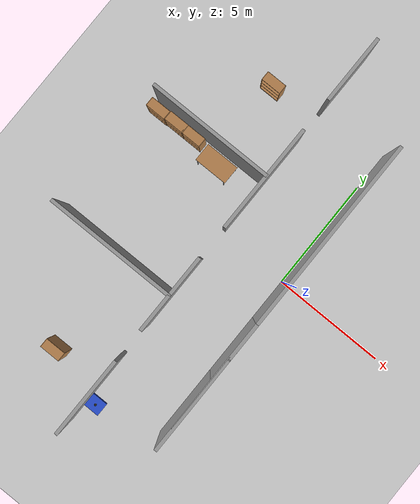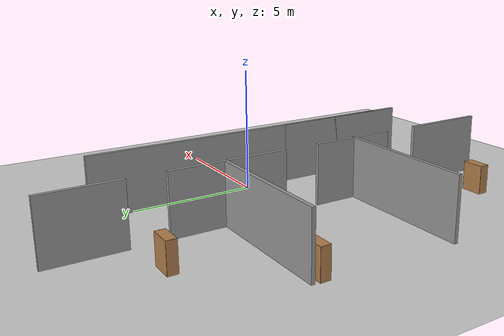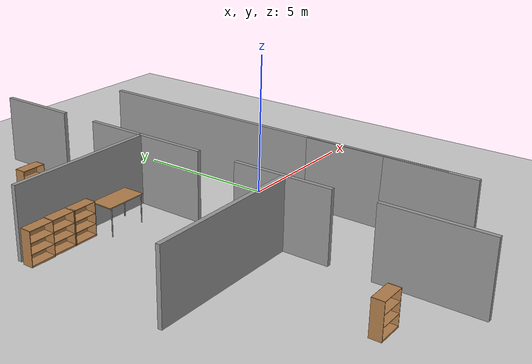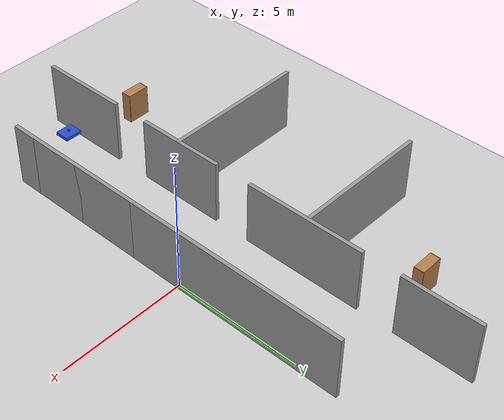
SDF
<sdf version="1.7">
 <world name="default">
  <model name="ground_plane">
   <static>1</static>
   <link name="link">
    <collision name="collision">
     <geometry><plane><normal>0 0 1</normal><size>100 100</size></plane></geometry>
     <surface>
      <contact><collide_bitmask>65535</collide_bitmask></contact>
      <friction><ode><mu>100</mu><mu2>50</mu2></ode></friction>
     </surface>
    </collision>
    <visual name="visual">
     <cast_shadows>0</cast_shadows>
     <geometry><plane><normal>0 0 1</normal><size>100 100</size></plane></geometry>
     <material>
      <script><uri>file://media/materials/scripts/gazebo.material</uri><name>Gazebo/Grey</name></script>
     </material>
    </visual>
   </link>
  </model>
  <model name="my_bot">
   <link name="base_link">
    <inertial>
     <pose>0 0 0.0345 0 -0 0</pose>
     <mass>1</mass>
     <inertia>
      <ixx>0.0393076</ixx>
      <ixy>0</ixy>
      <ixz>2.60209e-18</ixz>
      <iyy>0.0647243</iyy>
      <iyz>0</iyz>
      <izz>0.0875577</izz>
     </inertia>
    </inertial>
    <collision name="base_link_fixed_joint_lump__chassis_collision">
     <pose>0 0 0.083 0 -0 0</pose>
     <geometry><box><size>0.7 0.6 0.126</size></box></geometry>
    </collision>
    <collision name="base_link_fixed_joint_lump__caster1_wheel_collision_1">
     <pose>-0.3 0.2 -0.065 0 -0 0</pose>
     <geometry><sphere><radius>0.01</radius></sphere></geometry>
     <surface><friction><ode><mu>0.001</mu><mu2>0.001</mu2></ode></friction></surface>
    </collision>
    <collision name="base_link_fixed_joint_lump__caster2_wheel_collision_2">
     <pose>-0.3 -0.2 -0.065 0 -0 0</pose>
     <geometry><sphere><radius>0.01</radius></sphere></geometry>
     <surface><friction><ode><mu>0.001</mu><mu2>0.001</mu2></ode></friction></surface>
    </collision>
    <collision name="base_link_fixed_joint_lump__caster3_wheel_collision_3">
     <pose>0.3 -0.2 -0.065 0 -0 0</pose>
     <geometry><sphere><radius>0.01</radius></sphere></geometry>
     <surface><friction><ode><mu>0.001</mu><mu2>0.001</mu2></ode></friction></surface>
    </collision>
    <collision name="base_link_fixed_joint_lump__caster4_wheel_collision_4">
     <pose>0.3 0.2 -0.065 0 -0 0</pose>
     <geometry><sphere><radius>0.01</radius></sphere></geometry>
     <surface><friction><ode><mu>0.001</mu><mu2>0.001</mu2></ode></friction></surface>
    </collision>
    <collision name="base_link_fixed_joint_lump__laser_frame_collision_5">
     <pose>0 0 0.19 0 -0 0</pose>
     <geometry><cylinder><length>0.04</length><radius>0.05</radius></cylinder></geometry>
    </collision>
    <visual name="base_link_fixed_joint_lump__chassis_visual">
     <pose>0 0 0.083 0 -0 0</pose>
     <geometry><box><size>0.7 0.6 0.126</size></box></geometry>
     <material>
      <script><name>Gazebo/Blue</name><uri>file://media/materials/scripts/gazebo.material</uri></script>
     </material>
    </visual>
    <visual name="base_link_fixed_joint_lump__caster1_wheel_visual_1">
     <pose>-0.3 0.2 -0.065 0 -0 0</pose>
     <geometry><sphere><radius>0.01</radius></sphere></geometry>
     <material>
      <script><name>Gazebo/Blue</name><uri>file://media/materials/scripts/gazebo.material</uri></script>
     </material>
    </visual>
    <visual name="base_link_fixed_joint_lump__caster2_wheel_visual_2">
     <pose>-0.3 -0.2 -0.065 0 -0 0</pose>
     <geometry><sphere><radius>0.01</radius></sphere></geometry>
     <material>
      <script><name>Gazebo/Blue</name><uri>file://media/materials/scripts/gazebo.material</uri></script>
     </material>
    </visual>
    <visual name="base_link_fixed_joint_lump__caster3_wheel_visual_3">
     <pose>0.3 -0.2 -0.065 0 -0 0</pose>
     <geometry><sphere><radius>0.01</radius></sphere></geometry>
     <material>
      <script><name>Gazebo/Blue</name><uri>file://media/materials/scripts/gazebo.material</uri></script>
     </material>
    </visual>
    <visual name="base_link_fixed_joint_lump__caster4_wheel_visual_4">
     <pose>0.3 0.2 -0.065 0 -0 0</pose>
     <geometry><sphere><radius>0.01</radius></sphere></geometry>
     <material>
      <script><name>Gazebo/Blue</name><uri>file://media/materials/scripts/gazebo.material</uri></script>
     </material>
    </visual>
    <visual name="base_link_fixed_joint_lump__face_link_visual_5">
     <pose>0.35 0.05 0.093 3.14159 1.57079 3.14159</pose>
     <geometry><cylinder><length>0.002</length><radius>0.01</radius></cylinder></geometry>
     <material>
      <script><name>Gazebo/Black</name><uri>file://media/materials/scripts/gazebo.material</uri></script>
     </material>
    </visual>
    <visual name="base_link_fixed_joint_lump__face_link_visual_6">
     <pose>0.35 -0.05 0.093 3.14159 1.57079 3.14159</pose>
     <geometry><cylinder><length>0.002</length><radius>0.01</radius></cylinder></geometry>
     <material>
      <script><name>Gazebo/Black</name><uri>file://media/materials/scripts/gazebo.material</uri></script>
     </material>
    </visual>
    <visual name="base_link_fixed_joint_lump__face_link_visual_7">
     <pose>0.339 0 0.083 0 1.5 0</pose>
     <geometry><cylinder><length>0.02</length><radius>0.03</radius></cylinder></geometry>
     <material>
      <script><name>Gazebo/Black</name><uri>file://media/materials/scripts/gazebo.material</uri></script>
     </material>
    </visual>
    <visual name="base_link_fixed_joint_lump__laser_frame_visual_8">
     <pose>0 0 0.19 0 -0 0</pose>
     <geometry><cylinder><length>0.04</length><radius>0.05</radius></cylinder></geometry>
     <material>
      <script><name>Gazebo/Black</name><uri>file://media/materials/scripts/gazebo.material</uri></script>
     </material>
    </visual>
    <visual name="base_link_fixed_joint_lump__laser_frame_visual_9">
     <pose>0 0 0.14 0 -0 0</pose>
     <geometry><cylinder><length>0.1</length><radius>0.01</radius></cylinder></geometry>
     <material>
      <script><name>Gazebo/Black</name><uri>file://media/materials/scripts/gazebo.material</uri></script>
     </material>
    </visual>
    <sensor name="laser" type="ray">
     <visualize>1</visualize>
     <always_on>1</always_on>
     <update_rate>10</update_rate>
     <ray>
      <scan>
       <horizontal>
        <samples>360</samples>
        <resolution>1</resolution>
        <min_angle>-3.14</min_angle>
        <max_angle>3.14</max_angle>
       </horizontal>
       <vertical><samples>1</samples><min_angle>0</min_angle><max_angle>0</max_angle></vertical>
      </scan>
      <range><min>0.3</min><max>12</max><resolution>0.015</resolution></range>
      <noise><type>gaussian</type><mean>0</mean><stddev>0.01</stddev></noise>
     </ray>
     <plugin name="laser_controller" filename="libgazebo_ros_ray_sensor.so">
      <ros><remapping>~/out:=scan</remapping></ros>
      <output_type>sensor_msgs/LaserScan</output_type>
      <alwaysOn>1</alwaysOn>
      <updateRate>10</updateRate>
      <topicName>scan</topicName>
      <frame_name>laser_frame</frame_name>
      <output_type>sensor_msgs/LaserScan</output_type>
     </plugin>
     <pose>0 0 0.19 0 -0 0</pose>
    </sensor>
   </link>
   <joint name="left_wheel_joint" type="revolute">
    <pose relative_to="base_link">0 0.205 0 -1.5708 0 0</pose>
    <parent>base_link</parent>
    <child>left_wheel</child>
    <axis>
     <xyz>0 0 1</xyz>
     <limit><lower>-1e+16</lower><upper>1e+16</upper></limit>
     <dynamics><spring_reference>0</spring_reference><spring_stiffness>0</spring_stiffness></dynamics>
    </axis>
   </joint>
   <link name="left_wheel">
    <pose relative_to="left_wheel_joint">0 0 0 0 -0 0</pose>
    <inertial>
     <mass>0.05</mass>
     <inertia>
      <ixx>7.69792e-05</ixx>
      <ixy>0</ixy>
      <ixz>0</ixz>
      <iyy>7.69792e-05</iyy>
      <iyz>0</iyz>
      <izz>0.000140625</izz>
     </inertia>
    </inertial>
    <collision name="left_wheel_collision">
     <geometry><sphere><radius>0.075</radius></sphere></geometry>
    </collision>
    <visual name="left_wheel_visual">
     <geometry><cylinder><length>0.04</length><radius>0.075</radius></cylinder></geometry>
     <material>
      <script><name>Gazebo/Black</name><uri>file://media/materials/scripts/gazebo.material</uri></script>
     </material>
    </visual>
   </link>
   <joint name="right_wheel_joint" type="revolute">
    <pose relative_to="base_link">0 -0.205 0 1.5708 -0 0</pose>
    <parent>base_link</parent>
    <child>right_wheel</child>
    <axis>
     <xyz>0 0 -1</xyz>
     <limit><lower>-1e+16</lower><upper>1e+16</upper></limit>
     <dynamics><spring_reference>0</spring_reference><spring_stiffness>0</spring_stiffness></dynamics>
    </axis>
   </joint>
   <link name="right_wheel">
    <pose relative_to="right_wheel_joint">0 0 0 0 -0 0</pose>
    <inertial>
     <mass>0.05</mass>
     <inertia>
      <ixx>7.69792e-05</ixx>
      <ixy>0</ixy>
      <ixz>0</ixz>
      <iyy>7.69792e-05</iyy>
      <iyz>0</iyz>
      <izz>0.000140625</izz>
     </inertia>
    </inertial>
    <collision name="right_wheel_collision">
     <geometry><sphere><radius>0.075</radius></sphere></geometry>
    </collision>
    <visual name="right_wheel_visual">
     <geometry><cylinder><length>0.04</length><radius>0.075</radius></cylinder></geometry>
     <material>
      <script><name>Gazebo/Black</name><uri>file://media/materials/scripts/gazebo.material</uri></script>
     </material>
    </visual>
   </link>
   <static>0</static>
   <plugin name="gazebo_ros2_control" filename="libgazebo_ros2_control.so">
    <parameters>/home/robot/robot/install/ramabot/share/ramabot/config/my_controllers.yaml</parameters>
    <parameters>/home/robot/robot/install/ramabot/share/ramabot/config/gaz_ros2_ctl_use_sim.yaml</parameters>
   </plugin>
   <pose>-2.75861 -8.67534 0.074995 -2.5e-05 -0 -0.001635</pose>
  </model>
  <model name="samping">
   <pose>-3.71493 -0.202752 0 0 -0 0</pose>
   <link name="Wall_31">
    <collision name="Wall_31_Collision">
     <geometry><box><size>3 0.15 2.5</size></box></geometry>
     <pose>0 0 1.25 0 -0 0</pose>
    </collision>
    <visual name="Wall_31_Visual">
     <pose>0 0 1.25 0 -0 0</pose>
     <geometry><box><size>3 0.15 2.5</size></box></geometry>
     <material>
      <script><uri>file://media/materials/scripts/gazebo.material</uri><name>Gazebo/Grey</name></script>
      <ambient>1 1 1 1</ambient>
     </material>
     <meta><layer>0</layer></meta>
    </visual>
    <pose>0.530829 8.05 0 0 -0 -1.5708</pose>
   </link>
   <link name="Wall_33">
    <collision name="Wall_33_Collision">
     <geometry><box><size>4.75 0.15 2.5</size></box></geometry>
     <pose>0 0 1.25 0 -0 0</pose>
    </collision>
    <visual name="Wall_33_Visual">
     <pose>0 0 1.25 0 -0 0</pose>
     <geometry><box><size>4.75 0.15 2.5</size></box></geometry>
     <material>
      <script><uri>file://media/materials/scripts/gazebo.material</uri><name>Gazebo/Grey</name></script>
      <ambient>1 1 1 1</ambient>
     </material>
     <meta><layer>0</layer></meta>
    </visual>
    <pose>0.530829 2.725 0 0 -0 -1.5708</pose>
   </link>
   <link name="Wall_35">
    <collision name="Wall_35_Collision">
     <geometry><box><size>3.5 0.15 2.5</size></box></geometry>
     <pose>0 0 1.25 0 -0 0</pose>
    </collision>
    <visual name="Wall_35_Visual">
     <pose>0 0 1.25 0 -0 0</pose>
     <geometry><box><size>3.5 0.15 2.5</size></box></geometry>
     <material>
      <script><uri>file://media/materials/scripts/gazebo.material</uri><name>Gazebo/Grey</name></script>
      <ambient>1 1 1 1</ambient>
     </material>
     <meta><layer>0</layer></meta>
    </visual>
    <pose>0.530829 -2.85 0 0 -0 -1.5708</pose>
   </link>
   <link name="Wall_37">
    <collision name="Wall_37_Collision">
     <geometry><box><size>3.5 0.15 2.5</size></box></geometry>
     <pose>0 0 1.25 0 -0 0</pose>
    </collision>
    <visual name="Wall_37_Visual">
     <pose>0 0 1.25 0 -0 0</pose>
     <geometry><box><size>3.5 0.15 2.5</size></box></geometry>
     <material>
      <script><uri>file://media/materials/scripts/gazebo.material</uri><name>Gazebo/Grey</name></script>
      <ambient>1 1 1 1</ambient>
     </material>
     <meta><layer>0</layer></meta>
    </visual>
    <pose>0.530829 -7.8 0 0 -0 -1.5708</pose>
   </link>
   <link name="Wall_39">
    <collision name="Wall_39_Collision">
     <geometry><box><size>5.5 0.15 2.5</size></box></geometry>
     <pose>0 0 1.25 0 -0 0</pose>
    </collision>
    <visual name="Wall_39_Visual">
     <pose>0 0 1.25 0 -0 0</pose>
     <geometry><box><size>5.5 0.15 2.5</size></box></geometry>
     <material>
      <script><uri>file://media/materials/scripts/gazebo.material</uri><name>Gazebo/Grey</name></script>
      <ambient>1 1 1 1</ambient>
     </material>
     <meta><layer>0</layer></meta>
    </visual>
    <pose>-2.19664 2.86376 0 0 -0 3.14159</pose>
   </link>
   <link name="Wall_41">
    <collision name="Wall_41_Collision">
     <geometry><box><size>5.75 0.15 2.5</size></box></geometry>
     <pose>0 0 1.25 0 -0 0</pose>
    </collision>
    <visual name="Wall_41_Visual">
     <pose>0 0 1.25 0 -0 0</pose>
     <geometry><box><size>5.75 0.15 2.5</size></box></geometry>
     <material>
      <script><uri>file://media/materials/scripts/gazebo.material</uri><name>Gazebo/Grey</name></script>
      <ambient>1 1 1 1</ambient>
     </material>
     <meta><layer>0</layer></meta>
    </visual>
    <pose>-2.28666 -2.92545 0 0 -0 3.14159</pose>
   </link>
   <static>1</static>
  </model>
  <model name="bookshelf_0">
   <static>1</static>
   <link name="link">
    <inertial><mass>1</mass></inertial>
    <collision name="back">
     <pose>0 0.005 0.6 0 -0 0</pose>
     <geometry><box><size>0.9 0.01 1.2</size></box></geometry>
    </collision>
    <visual name="visual1">
     <pose>0 0.005 0.6 0 -0 0</pose>
     <geometry><box><size>0.9 0.01 1.2</size></box></geometry>
     <material>
      <script><uri>file://media/materials/scripts/gazebo.material</uri><name>Gazebo/Wood</name></script>
     </material>
    </visual>
    <collision name="left_side">
     <pose>0.45 -0.195 0.6 0 -0 0</pose>
     <geometry><box><size>0.02 0.4 1.2</size></box></geometry>
    </collision>
    <visual name="visual2">
     <pose>0.45 -0.195 0.6 0 -0 0</pose>
     <geometry><box><size>0.02 0.4 1.2</size></box></geometry>
     <material>
      <script><uri>file://media/materials/scripts/gazebo.material</uri><name>Gazebo/Wood</name></script>
     </material>
    </visual>
    <collision name="right_side">
     <pose>-0.45 -0.195 0.6 0 -0 0</pose>
     <geometry><box><size>0.02 0.4 1.2</size></box></geometry>
    </collision>
    <visual name="visual3">
     <pose>-0.45 -0.195 0.6 0 -0 0</pose>
     <geometry><box><size>0.02 0.4 1.2</size></box></geometry>
     <material>
      <script><uri>file://media/materials/scripts/gazebo.material</uri><name>Gazebo/Wood</name></script>
     </material>
    </visual>
    <collision name="bottom">
     <pose>0 -0.195 0.03 0 -0 0</pose>
     <geometry><box><size>0.88 0.4 0.06</size></box></geometry>
    </collision>
    <visual name="visual4">
     <pose>0 -0.195 0.03 0 -0 0</pose>
     <geometry><box><size>0.88 0.4 0.06</size></box></geometry>
     <material>
      <script><uri>file://media/materials/scripts/gazebo.material</uri><name>Gazebo/Wood</name></script>
     </material>
    </visual>
    <collision name="top">
     <pose>0 -0.195 1.19 0 -0 0</pose>
     <geometry><box><size>0.88 0.4 0.02</size></box></geometry>
    </collision>
    <visual name="visual5">
     <pose>0 -0.195 1.19 0 -0 0</pose>
     <geometry><box><size>0.88 0.4 0.02</size></box></geometry>
     <material>
      <script><uri>file://media/materials/scripts/gazebo.material</uri><name>Gazebo/Wood</name></script>
     </material>
    </visual>
    <collision name="low_shelf">
     <pose>0 -0.195 0.43 0 -0 0</pose>
     <geometry><box><size>0.88 0.4 0.02</size></box></geometry>
    </collision>
    <visual name="visual6">
     <pose>0 -0.195 0.43 0 -0 0</pose>
     <geometry><box><size>0.88 0.4 0.02</size></box></geometry>
     <material>
      <script><uri>file://media/materials/scripts/gazebo.material</uri><name>Gazebo/Wood</name></script>
     </material>
    </visual>
    <collision name="high_shelf">
     <pose>0 -0.195 0.8 0 -0 0</pose>
     <geometry><box><size>0.88 0.4 0.02</size></box></geometry>
    </collision>
    <visual name="visual7">
     <pose>0 -0.195 0.8 0 -0 0</pose>
     <geometry><box><size>0.88 0.4 0.02</size></box></geometry>
     <material>
      <script><uri>file://media/materials/scripts/gazebo.material</uri><name>Gazebo/Wood</name></script>
     </material>
    </visual>
   </link>
   <pose>-5.33418 6.12104 0 0 -0 0</pose>
  </model>
  <model name="bookshelf_3">
   <static>1</static>
   <link name="link">
    <inertial><mass>1</mass></inertial>
    <collision name="back">
     <pose>0 0.005 0.6 0 -0 0</pose>
     <geometry><box><size>0.9 0.01 1.2</size></box></geometry>
    </collision>
    <visual name="visual1">
     <pose>0 0.005 0.6 0 -0 0</pose>
     <geometry><box><size>0.9 0.01 1.2</size></box></geometry>
     <material>
      <script><uri>file://media/materials/scripts/gazebo.material</uri><name>Gazebo/Wood</name></script>
     </material>
    </visual>
    <collision name="left_side">
     <pose>0.45 -0.195 0.6 0 -0 0</pose>
     <geometry><box><size>0.02 0.4 1.2</size></box></geometry>
    </collision>
    <visual name="visual2">
     <pose>0.45 -0.195 0.6 0 -0 0</pose>
     <geometry><box><size>0.02 0.4 1.2</size></box></geometry>
     <material>
      <script><uri>file://media/materials/scripts/gazebo.material</uri><name>Gazebo/Wood</name></script>
     </material>
    </visual>
    <collision name="right_side">
     <pose>-0.45 -0.195 0.6 0 -0 0</pose>
     <geometry><box><size>0.02 0.4 1.2</size></box></geometry>
    </collision>
    <visual name="visual3">
     <pose>-0.45 -0.195 0.6 0 -0 0</pose>
     <geometry><box><size>0.02 0.4 1.2</size></box></geometry>
     <material>
      <script><uri>file://media/materials/scripts/gazebo.material</uri><name>Gazebo/Wood</name></script>
     </material>
    </visual>
    <collision name="bottom">
     <pose>0 -0.195 0.03 0 -0 0</pose>
     <geometry><box><size>0.88 0.4 0.06</size></box></geometry>
    </collision>
    <visual name="visual4">
     <pose>0 -0.195 0.03 0 -0 0</pose>
     <geometry><box><size>0.88 0.4 0.06</size></box></geometry>
     <material>
      <script><uri>file://media/materials/scripts/gazebo.material</uri><name>Gazebo/Wood</name></script>
     </material>
    </visual>
    <collision name="top">
     <pose>0 -0.195 1.19 0 -0 0</pose>
     <geometry><box><size>0.88 0.4 0.02</size></box></geometry>
    </collision>
    <visual name="visual5">
     <pose>0 -0.195 1.19 0 -0 0</pose>
     <geometry><box><size>0.88 0.4 0.02</size></box></geometry>
     <material>
      <script><uri>file://media/materials/scripts/gazebo.material</uri><name>Gazebo/Wood</name></script>
     </material>
    </visual>
    <collision name="low_shelf">
     <pose>0 -0.195 0.43 0 -0 0</pose>
     <geometry><box><size>0.88 0.4 0.02</size></box></geometry>
    </collision>
    <visual name="visual6">
     <pose>0 -0.195 0.43 0 -0 0</pose>
     <geometry><box><size>0.88 0.4 0.02</size></box></geometry>
     <material>
      <script><uri>file://media/materials/scripts/gazebo.material</uri><name>Gazebo/Wood</name></script>
     </material>
    </visual>
    <collision name="high_shelf">
     <pose>0 -0.195 0.8 0 -0 0</pose>
     <geometry><box><size>0.88 0.4 0.02</size></box></geometry>
    </collision>
    <visual name="visual7">
     <pose>0 -0.195 0.8 0 -0 0</pose>
     <geometry><box><size>0.88 0.4 0.02</size></box></geometry>
     <material>
      <script><uri>file://media/materials/scripts/gazebo.material</uri><name>Gazebo/Wood</name></script>
     </material>
    </visual>
   </link>
   <pose>-8.25417 2.42816 0 0 -0 0</pose>
  </model>
  <model name="bookshelf_4">
   <static>1</static>
   <link name="link">
    <inertial><mass>1</mass></inertial>
    <collision name="back">
     <pose>0 0.005 0.6 0 -0 0</pose>
     <geometry><box><size>0.9 0.01 1.2</size></box></geometry>
    </collision>
    <visual name="visual1">
     <pose>0 0.005 0.6 0 -0 0</pose>
     <geometry><box><size>0.9 0.01 1.2</size></box></geometry>
     <material>
      <script><uri>file://media/materials/scripts/gazebo.material</uri><name>Gazebo/Wood</name></script>
     </material>
    </visual>
    <collision name="left_side">
     <pose>0.45 -0.195 0.6 0 -0 0</pose>
     <geometry><box><size>0.02 0.4 1.2</size></box></geometry>
    </collision>
    <visual name="visual2">
     <pose>0.45 -0.195 0.6 0 -0 0</pose>
     <geometry><box><size>0.02 0.4 1.2</size></box></geometry>
     <material>
      <script><uri>file://media/materials/scripts/gazebo.material</uri><name>Gazebo/Wood</name></script>
     </material>
    </visual>
    <collision name="right_side">
     <pose>-0.45 -0.195 0.6 0 -0 0</pose>
     <geometry><box><size>0.02 0.4 1.2</size></box></geometry>
    </collision>
    <visual name="visual3">
     <pose>-0.45 -0.195 0.6 0 -0 0</pose>
     <geometry><box><size>0.02 0.4 1.2</size></box></geometry>
     <material>
      <script><uri>file://media/materials/scripts/gazebo.material</uri><name>Gazebo/Wood</name></script>
     </material>
    </visual>
    <collision name="bottom">
     <pose>0 -0.195 0.03 0 -0 0</pose>
     <geometry><box><size>0.88 0.4 0.06</size></box></geometry>
    </collision>
    <visual name="visual4">
     <pose>0 -0.195 0.03 0 -0 0</pose>
     <geometry><box><size>0.88 0.4 0.06</size></box></geometry>
     <material>
      <script><uri>file://media/materials/scripts/gazebo.material</uri><name>Gazebo/Wood</name></script>
     </material>
    </visual>
    <collision name="top">
     <pose>0 -0.195 1.19 0 -0 0</pose>
     <geometry><box><size>0.88 0.4 0.02</size></box></geometry>
    </collision>
    <visual name="visual5">
     <pose>0 -0.195 1.19 0 -0 0</pose>
     <geometry><box><size>0.88 0.4 0.02</size></box></geometry>
     <material>
      <script><uri>file://media/materials/scripts/gazebo.material</uri><name>Gazebo/Wood</name></script>
     </material>
    </visual>
    <collision name="low_shelf">
     <pose>0 -0.195 0.43 0 -0 0</pose>
     <geometry><box><size>0.88 0.4 0.02</size></box></geometry>
    </collision>
    <visual name="visual6">
     <pose>0 -0.195 0.43 0 -0 0</pose>
     <geometry><box><size>0.88 0.4 0.02</size></box></geometry>
     <material>
      <script><uri>file://media/materials/scripts/gazebo.material</uri><name>Gazebo/Wood</name></script>
     </material>
    </visual>
    <collision name="high_shelf">
     <pose>0 -0.195 0.8 0 -0 0</pose>
     <geometry><box><size>0.88 0.4 0.02</size></box></geometry>
    </collision>
    <visual name="visual7">
     <pose>0 -0.195 0.8 0 -0 0</pose>
     <geometry><box><size>0.88 0.4 0.02</size></box></geometry>
     <material>
      <script><uri>file://media/materials/scripts/gazebo.material</uri><name>Gazebo/Wood</name></script>
     </material>
    </visual>
   </link>
   <pose>-7.33837 2.45677 0 0 -0 0</pose>
  </model>
  <model name="bookshelf_5">
   <static>1</static>
   <link name="link">
    <inertial><mass>1</mass></inertial>
    <collision name="back">
     <pose>0 0.005 0.6 0 -0 0</pose>
     <geometry><box><size>0.9 0.01 1.2</size></box></geometry>
    </collision>
    <visual name="visual1">
     <pose>0 0.005 0.6 0 -0 0</pose>
     <geometry><box><size>0.9 0.01 1.2</size></box></geometry>
     <material>
      <script><uri>file://media/materials/scripts/gazebo.material</uri><name>Gazebo/Wood</name></script>
     </material>
    </visual>
    <collision name="left_side">
     <pose>0.45 -0.195 0.6 0 -0 0</pose>
     <geometry><box><size>0.02 0.4 1.2</size></box></geometry>
    </collision>
    <visual name="visual2">
     <pose>0.45 -0.195 0.6 0 -0 0</pose>
     <geometry><box><size>0.02 0.4 1.2</size></box></geometry>
     <material>
      <script><uri>file://media/materials/scripts/gazebo.material</uri><name>Gazebo/Wood</name></script>
     </material>
    </visual>
    <collision name="right_side">
     <pose>-0.45 -0.195 0.6 0 -0 0</pose>
     <geometry><box><size>0.02 0.4 1.2</size></box></geometry>
    </collision>
    <visual name="visual3">
     <pose>-0.45 -0.195 0.6 0 -0 0</pose>
     <geometry><box><size>0.02 0.4 1.2</size></box></geometry>
     <material>
      <script><uri>file://media/materials/scripts/gazebo.material</uri><name>Gazebo/Wood</name></script>
     </material>
    </visual>
    <collision name="bottom">
     <pose>0 -0.195 0.03 0 -0 0</pose>
     <geometry><box><size>0.88 0.4 0.06</size></box></geometry>
    </collision>
    <visual name="visual4">
     <pose>0 -0.195 0.03 0 -0 0</pose>
     <geometry><box><size>0.88 0.4 0.06</size></box></geometry>
     <material>
      <script><uri>file://media/materials/scripts/gazebo.material</uri><name>Gazebo/Wood</name></script>
     </material>
    </visual>
    <collision name="top">
     <pose>0 -0.195 1.19 0 -0 0</pose>
     <geometry><box><size>0.88 0.4 0.02</size></box></geometry>
    </collision>
    <visual name="visual5">
     <pose>0 -0.195 1.19 0 -0 0</pose>
     <geometry><box><size>0.88 0.4 0.02</size></box></geometry>
     <material>
      <script><uri>file://media/materials/scripts/gazebo.material</uri><name>Gazebo/Wood</name></script>
     </material>
    </visual>
    <collision name="low_shelf">
     <pose>0 -0.195 0.43 0 -0 0</pose>
     <geometry><box><size>0.88 0.4 0.02</size></box></geometry>
    </collision>
    <visual name="visual6">
     <pose>0 -0.195 0.43 0 -0 0</pose>
     <geometry><box><size>0.88 0.4 0.02</size></box></geometry>
     <material>
      <script><uri>file://media/materials/scripts/gazebo.material</uri><name>Gazebo/Wood</name></script>
     </material>
    </visual>
    <collision name="high_shelf">
     <pose>0 -0.195 0.8 0 -0 0</pose>
     <geometry><box><size>0.88 0.4 0.02</size></box></geometry>
    </collision>
    <visual name="visual7">
     <pose>0 -0.195 0.8 0 -0 0</pose>
     <geometry><box><size>0.88 0.4 0.02</size></box></geometry>
     <material>
      <script><uri>file://media/materials/scripts/gazebo.material</uri><name>Gazebo/Wood</name></script>
     </material>
    </visual>
   </link>
   <pose>-6.47939 2.45677 0 0 -0 0</pose>
  </model>
  <model name="bookshelf_6">
   <static>1</static>
   <link name="link">
    <inertial><mass>1</mass></inertial>
    <collision name="back">
     <pose>0 0.005 0.6 0 -0 0</pose>
     <geometry><box><size>0.9 0.01 1.2</size></box></geometry>
    </collision>
    <visual name="visual1">
     <pose>0 0.005 0.6 0 -0 0</pose>
     <geometry><box><size>0.9 0.01 1.2</size></box></geometry>
     <material>
      <script><uri>file://media/materials/scripts/gazebo.material</uri><name>Gazebo/Wood</name></script>
     </material>
    </visual>
    <collision name="left_side">
     <pose>0.45 -0.195 0.6 0 -0 0</pose>
     <geometry><box><size>0.02 0.4 1.2</size></box></geometry>
    </collision>
    <visual name="visual2">
     <pose>0.45 -0.195 0.6 0 -0 0</pose>
     <geometry><box><size>0.02 0.4 1.2</size></box></geometry>
     <material>
      <script><uri>file://media/materials/scripts/gazebo.material</uri><name>Gazebo/Wood</name></script>
     </material>
    </visual>
    <collision name="right_side">
     <pose>-0.45 -0.195 0.6 0 -0 0</pose>
     <geometry><box><size>0.02 0.4 1.2</size></box></geometry>
    </collision>
    <visual name="visual3">
     <pose>-0.45 -0.195 0.6 0 -0 0</pose>
     <geometry><box><size>0.02 0.4 1.2</size></box></geometry>
     <material>
      <script><uri>file://media/materials/scripts/gazebo.material</uri><name>Gazebo/Wood</name></script>
     </material>
    </visual>
    <collision name="bottom">
     <pose>0 -0.195 0.03 0 -0 0</pose>
     <geometry><box><size>0.88 0.4 0.06</size></box></geometry>
    </collision>
    <visual name="visual4">
     <pose>0 -0.195 0.03 0 -0 0</pose>
     <geometry><box><size>0.88 0.4 0.06</size></box></geometry>
     <material>
      <script><uri>file://media/materials/scripts/gazebo.material</uri><name>Gazebo/Wood</name></script>
     </material>
    </visual>
    <collision name="top">
     <pose>0 -0.195 1.19 0 -0 0</pose>
     <geometry><box><size>0.88 0.4 0.02</size></box></geometry>
    </collision>
    <visual name="visual5">
     <pose>0 -0.195 1.19 0 -0 0</pose>
     <geometry><box><size>0.88 0.4 0.02</size></box></geometry>
     <material>
      <script><uri>file://media/materials/scripts/gazebo.material</uri><name>Gazebo/Wood</name></script>
     </material>
    </visual>
    <collision name="low_shelf">
     <pose>0 -0.195 0.43 0 -0 0</pose>
     <geometry><box><size>0.88 0.4 0.02</size></box></geometry>
    </collision>
    <visual name="visual6">
     <pose>0 -0.195 0.43 0 -0 0</pose>
     <geometry><box><size>0.88 0.4 0.02</size></box></geometry>
     <material>
      <script><uri>file://media/materials/scripts/gazebo.material</uri><name>Gazebo/Wood</name></script>
     </material>
    </visual>
    <collision name="high_shelf">
     <pose>0 -0.195 0.8 0 -0 0</pose>
     <geometry><box><size>0.88 0.4 0.02</size></box></geometry>
    </collision>
    <visual name="visual7">
     <pose>0 -0.195 0.8 0 -0 0</pose>
     <geometry><box><size>0.88 0.4 0.02</size></box></geometry>
     <material>
      <script><uri>file://media/materials/scripts/gazebo.material</uri><name>Gazebo/Wood</name></script>
     </material>
    </visual>
   </link>
   <pose>-5.42014 -7.59239 0 0 -0 0</pose>
  </model>
  <model name="table_0">
   <static>1</static>
   <link name="link">
    <collision name="surface">
     <pose>0 0 1 0 -0 0</pose>
     <geometry><box><size>1.5 0.8 0.03</size></box></geometry>
     <surface><friction><ode><mu>0.6</mu><mu2>0.6</mu2></ode></friction></surface>
    </collision>
    <visual name="visual1">
     <pose>0 0 1 0 -0 0</pose>
     <geometry><box><size>1.5 0.8 0.03</size></box></geometry>
     <material>
      <script><uri>file://media/materials/scripts/gazebo.material</uri><name>Gazebo/Wood</name></script>
     </material>
    </visual>
    <collision name="front_left_leg">
     <pose>0.68 0.38 0.5 0 -0 0</pose>
     <geometry><cylinder><radius>0.02</radius><length>1</length></cylinder></geometry>
    </collision>
    <visual name="front_left_leg">
     <pose>0.68 0.38 0.5 0 -0 0</pose>
     <geometry><cylinder><radius>0.02</radius><length>1</length></cylinder></geometry>
     <material>
      <script><uri>file://media/materials/scripts/gazebo.material</uri><name>Gazebo/Grey</name></script>
     </material>
    </visual>
    <collision name="front_right_leg">
     <pose>0.68 -0.38 0.5 0 -0 0</pose>
     <geometry><cylinder><radius>0.02</radius><length>1</length></cylinder></geometry>
    </collision>
    <visual name="front_right_leg">
     <pose>0.68 -0.38 0.5 0 -0 0</pose>
     <geometry><cylinder><radius>0.02</radius><length>1</length></cylinder></geometry>
     <material>
      <script><uri>file://media/materials/scripts/gazebo.material</uri><name>Gazebo/Grey</name></script>
     </material>
    </visual>
    <collision name="back_right_leg">
     <pose>-0.68 -0.38 0.5 0 -0 0</pose>
     <geometry><cylinder><radius>0.02</radius><length>1</length></cylinder></geometry>
    </collision>
    <visual name="back_right_leg">
     <pose>-0.68 -0.38 0.5 0 -0 0</pose>
     <geometry><cylinder><radius>0.02</radius><length>1</length></cylinder></geometry>
     <material>
      <script><uri>file://media/materials/scripts/gazebo.material</uri><name>Gazebo/Grey</name></script>
     </material>
    </visual>
    <collision name="back_left_leg">
     <pose>-0.68 0.38 0.5 0 -0 0</pose>
     <geometry><cylinder><radius>0.02</radius><length>1</length></cylinder></geometry>
    </collision>
    <visual name="back_left_leg">
     <pose>-0.68 0.38 0.5 0 -0 0</pose>
     <geometry><cylinder><radius>0.02</radius><length>1</length></cylinder></geometry>
     <material>
      <script><uri>file://media/materials/scripts/gazebo.material</uri><name>Gazebo/Grey</name></script>
     </material>
    </visual>
   </link>
   <pose>-5.07668 1.99848 0 0 -0 0</pose>
  </model>
  <model name="tengah">
   <pose>0.057951 -0.584955 0 0 -0 0</pose>
   <link name="Wall_60">
    <collision name="Wall_60_Collision">
     <geometry><box><size>5 0.15 2.5</size></box></geometry>
     <pose>0 0 1.25 0 -0 0</pose>
    </collision>
    <visual name="Wall_60_Visual">
     <pose>0 0 1.25 0 -0 0</pose>
     <geometry><box><size>5 0.15 2.5</size></box></geometry>
     <material>
      <script><uri>file://media/materials/scripts/gazebo.material</uri><name>Gazebo/Grey</name></script>
      <ambient>1 1 1 1</ambient>
     </material>
     <meta><layer>0</layer></meta>
    </visual>
    <pose>-0 -3.8 0 0 -0 1.5708</pose>
   </link>
   <link name="Wall_61">
    <collision name="Wall_61_Collision">
     <geometry><box><size>6 0.15 2.5</size></box></geometry>
     <pose>0 0 1.25 0 -0 0</pose>
    </collision>
    <visual name="Wall_61_Visual">
     <pose>0 0 1.25 0 -0 0</pose>
     <geometry><box><size>6 0.15 2.5</size></box></geometry>
     <material>
      <script><uri>file://media/materials/scripts/gazebo.material</uri><name>Gazebo/Grey</name></script>
      <ambient>1 1 1 1</ambient>
     </material>
     <meta><layer>0</layer></meta>
    </visual>
    <pose>-0 -4.3 0 0 -0 -1.5708</pose>
   </link>
   <link name="Wall_63">
    <collision name="Wall_63_Collision">
     <geometry><box><size>8.75 0.15 2.5</size></box></geometry>
     <pose>0 0 1.25 0 -0 0</pose>
    </collision>
    <visual name="Wall_63_Visual">
     <pose>0 0 1.25 0 -0 0</pose>
     <geometry><box><size>8.75 0.15 2.5</size></box></geometry>
     <material>
      <script><uri>file://media/materials/scripts/gazebo.material</uri><name>Gazebo/Grey</name></script>
      <ambient>1 1 1 1</ambient>
     </material>
     <meta><layer>0</layer></meta>
    </visual>
    <pose>-0 2.925 0 0 -0 1.5708</pose>
   </link>
   <static>1</static>
  </model>
 </world>
</sdf>
